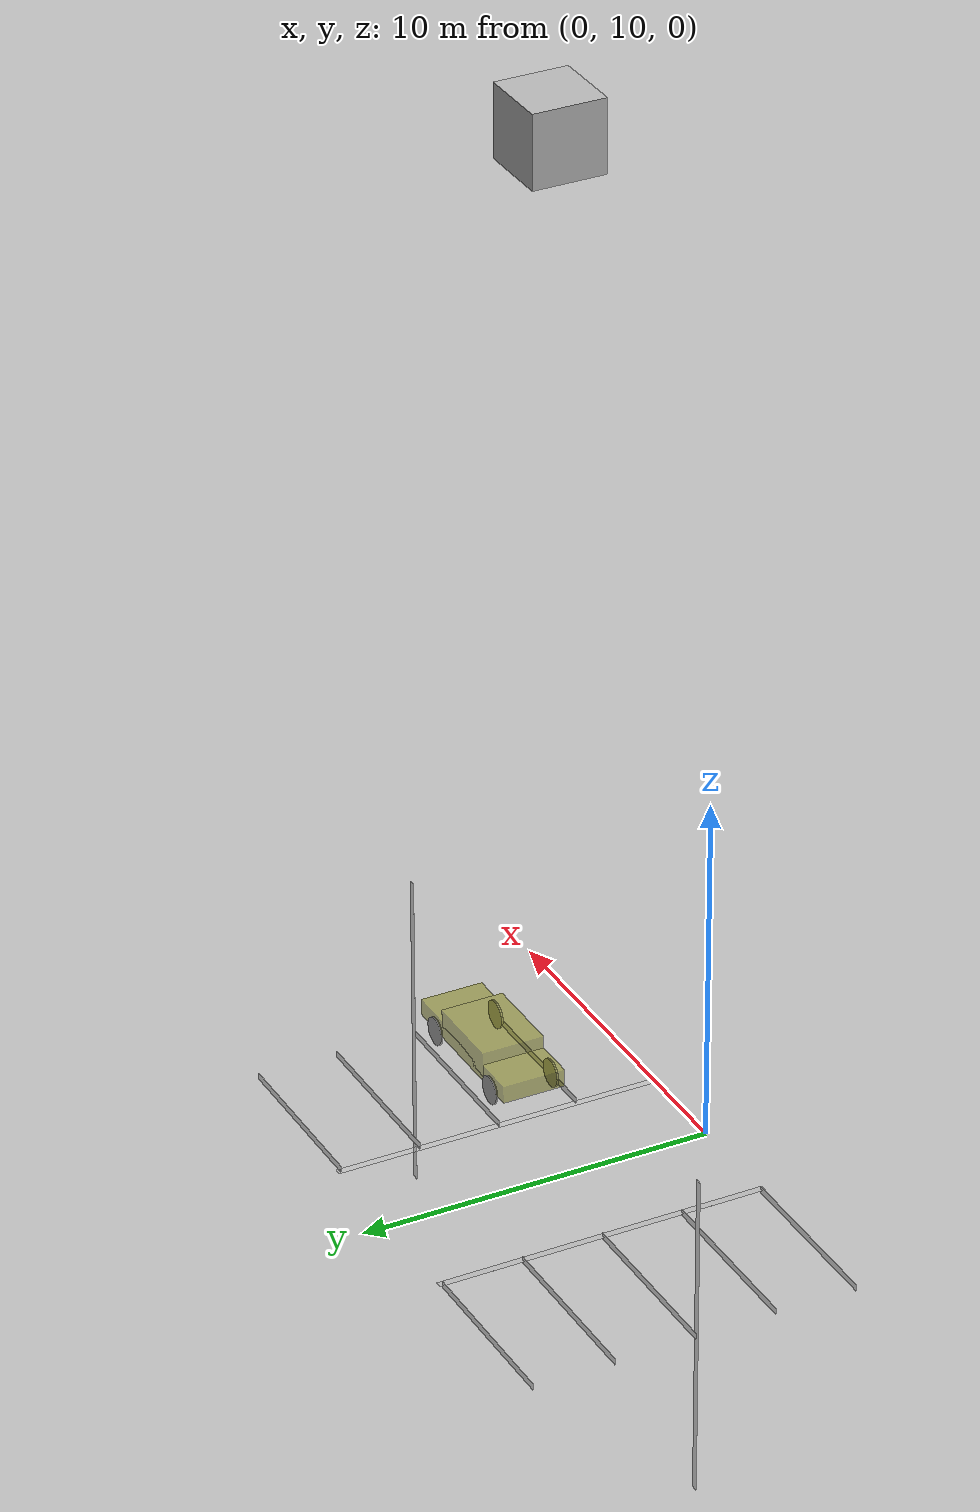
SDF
<sdf version="1.5">
 <world name="default">
  <scene><grid>false</grid></scene>
  <include><uri>model://sun</uri></include>
  <model name="ground">
   <link name="body">
    <collision name="geom">
     <geometry><plane><normal>0 0 1</normal><size>100 100</size></plane></geometry>
     <surface><friction><ode><mu>100</mu><mu2>100</mu2></ode></friction></surface>
    </collision>
    <velocity_decay><linear>0</linear><angular>0</angular></velocity_decay>
   </link>
   <static>false</static>
  </model>
  <model name="right_parking_line">
   <static>true</static>
   <pose>2.9 14.6 0 0 0 0</pose>
   <link name="col1">
    <collision name="col1">
     <geometry><plane><normal>0 0 1</normal><size>0.2 9.4</size></plane></geometry>
    </collision>
    <visual name="geom"><geometry><plane><normal>0 0 1</normal><size>0.2 9.4</size></plane></geometry></visual>
   </link>
   <link name="col2">
    <pose>5 0 0 0 0 0</pose>
    <collision name="geom2">
     <geometry><plane><normal>0 1 0</normal><size>0.2 9.2</size></plane></geometry>
    </collision>
    <visual name="geom3">
     <geometry><plane><normal>0 1 0</normal><size>0.2 9.4</size></plane></geometry>
     <material><ambient>1 1 1 1</ambient></material>
    </visual>
   </link>
   <link name="row1">
    <pose>2.5 -4.6 0 0 0 0</pose>
    <collision name="collision">
     <geometry><plane><normal>0 1 0</normal><size>5 0.2</size></plane></geometry>
    </collision>
    <visual name="visual">
     <geometry><plane><normal>0 1 0</normal><size>5 0.2</size></plane></geometry>
     <material><ambient>1 1 1 1</ambient></material>
    </visual>
   </link>
   <link name="row2">
    <pose>2.5 -2.3 0 0 0 0</pose>
    <collision name="collision">
     <geometry><plane><normal>0 1 0</normal><size>5 0.2</size></plane></geometry>
    </collision>
    <visual name="visual">
     <geometry><plane><normal>0 1 0</normal><size>5 0.2</size></plane></geometry>
     <material><ambient>1 1 1 1</ambient></material>
    </visual>
   </link>
   <link name="row3">
    <pose>2.5 0 0 0 0 0</pose>
    <collision name="collision">
     <geometry><plane><normal>0 1 0</normal><size>5 0.2</size></plane></geometry>
    </collision>
    <visual name="visual">
     <geometry><plane><normal>0 1 0</normal><size>5 0.2</size></plane></geometry>
     <material><ambient>1 1 1 1</ambient></material>
    </visual>
   </link>
   <link name="row4">
    <pose>2.5 2.3 0 0 0 0</pose>
    <collision name="collision">
     <geometry><plane><normal>0 1 0</normal><size>5 0.2</size></plane></geometry>
    </collision>
    <visual name="visual">
     <geometry><plane><normal>0 1 0</normal><size>5 0.2</size></plane></geometry>
     <material><ambient>1 1 1 1</ambient></material>
    </visual>
   </link>
   <link name="row5">
    <pose>2.5 4.6 0 0 0 0</pose>
    <collision name="collision">
     <geometry><plane><normal>0 1 0</normal><size>5 0.2</size></plane></geometry>
    </collision>
    <visual name="visual">
     <geometry><plane><normal>0 1 0</normal><size>5 0.2</size></plane></geometry>
     <material><ambient>1 1 1 1</ambient></material>
    </visual>
   </link>
  </model>
  <model name="left_parking_line">
   <static>true</static>
   <pose>-2.9 14.6 0 0 0 0</pose>
   <link name="col1">
    <collision name="col1">
     <geometry><plane><normal>0 0 1</normal><size>0.2 9.4</size></plane></geometry>
    </collision>
    <visual name="geom"><geometry><plane><normal>0 0 1</normal><size>0.2 9.4</size></plane></geometry></visual>
   </link>
   <link name="col2">
    <pose>-5 0 0 0 0 0</pose>
    <collision name="geom2">
     <geometry><plane><normal>0 1 0</normal><size>0.2 9.4</size></plane></geometry>
    </collision>
    <visual name="geom3">
     <geometry><plane><normal>0 1 0</normal><size>0.2 9.4</size></plane></geometry>
     <material><ambient>1 1 1 1</ambient></material>
    </visual>
   </link>
   <link name="row1">
    <pose>-2.5 -4.6 0 0 0 0</pose>
    <collision name="collision">
     <geometry><plane><normal>0 1 0</normal><size>5 0.2</size></plane></geometry>
    </collision>
    <visual name="visual">
     <geometry><plane><normal>0 1 0</normal><size>5 0.2</size></plane></geometry>
     <material><ambient>1 1 1 1</ambient></material>
    </visual>
   </link>
   <link name="row2">
    <pose>-2.5 -2.3 0 0 0 0</pose>
    <collision name="collision">
     <geometry><plane><normal>0 1 0</normal><size>5 0.2</size></plane></geometry>
    </collision>
    <visual name="visual">
     <geometry><plane><normal>0 1 0</normal><size>5 0.2</size></plane></geometry>
     <material><ambient>1 1 1 1</ambient></material>
    </visual>
   </link>
   <link name="row3">
    <pose>-2.5 0 0 0 0 0</pose>
    <collision name="collision">
     <geometry><plane><normal>0 1 0</normal><size>5 0.2</size></plane></geometry>
    </collision>
    <visual name="visual">
     <geometry><plane><normal>0 1 0</normal><size>5 0.2</size></plane></geometry>
     <material><ambient>1 1 1 1</ambient></material>
    </visual>
   </link>
   <link name="row4">
    <pose>-2.5 2.3 0 0 0 0</pose>
    <collision name="collision">
     <geometry><plane><normal>0 1 0</normal><size>5 0.2</size></plane></geometry>
    </collision>
    <visual name="visual">
     <geometry><plane><normal>0 1 0</normal><size>5 0.2</size></plane></geometry>
     <material><ambient>1 1 1 1</ambient></material>
    </visual>
   </link>
   <link name="row5">
    <pose>-2.5 4.6 0 0 0 0</pose>
    <collision name="collision">
     <geometry><plane><normal>0 1 0</normal><size>5 0.2</size></plane></geometry>
    </collision>
    <visual name="visual">
     <geometry><plane><normal>0 1 0</normal><size>5 0.2</size></plane></geometry>
     <material><ambient>1 1 1 1</ambient></material>
    </visual>
   </link>
  </model>
  <model name="Map_View_camera">
   <static>true</static>
   <pose>0 14.6 30 0 1.57 0</pose>
   <link name="link">
    <visual name="visual"><geometry><box><size>2 2 2</size></box></geometry></visual>
    <sensor name="my_camera" type="camera">
     <camera>
      <save enabled="false"><path>/tmp/Parking/Map_View</path></save>
      <horizontal_fov>1.047</horizontal_fov>
      <image><width>1920</width><height>1080</height></image>
      <clip><near>0.1</near><far>100</far></clip>
     </camera>
     <always_on>1</always_on>
     <update_rate>0.5</update_rate>
    </sensor>
   </link>
  </model>
  <model name="car1">
   <static>true</static>
   <pose>5.5 13.45 0.4 0 0 1.57</pose>
   <link name="link">
    <pose>0 0 0.3 0 0 0</pose>
    <collision name="collision"><geometry><box><size>1.8 4.8 0.5</size></box></geometry></collision>
    <visual name="visual">
     <geometry><box><size>1.8 4.8 0.5</size></box></geometry>
     <material><ambient>0.5 0.5 0 0.5</ambient></material>
    </visual>
    <collision name="up_body">
     <pose>0 0 0.25 0 0 0</pose>
     <geometry><box><size>1.8 2.4 0.7</size></box></geometry>
    </collision>
    <visual name="up_body">
     <pose>0 0 0.25 0 0 0</pose>
     <geometry><box><size>1.8 2.4 0.7</size></box></geometry>
     <material><ambient>0.5 0.5 0 0.5</ambient></material>
    </visual>
   </link>
   <link name="F_left_wheel">
    <pose>0.9 1.6 0   1.57 1.57 1.57</pose>
    <collision name="collision">
     <geometry><cylinder><radius>.4</radius><length>.05</length></cylinder></geometry>
    </collision>
    <visual name="visual">
     <geometry><cylinder><radius>.4</radius><length>.05</length></cylinder></geometry>
    </visual>
   </link>
   <link name="F_right_wheel">
    <pose>-0.9 1.6 0   1.57 1.57 1.57</pose>
    <collision name="collision">
     <geometry><cylinder><radius>.4</radius><length>.05</length></cylinder></geometry>
    </collision>
    <visual name="visual">
     <geometry><cylinder><radius>.4</radius><length>.05</length></cylinder></geometry>
    </visual>
   </link>
   <link name="B_left_wheel">
    <pose>0.9 -1.6 0   1.57 1.57 1.57</pose>
    <collision name="collision">
     <geometry><cylinder><radius>.4</radius><length>.05</length></cylinder></geometry>
    </collision>
    <visual name="visual">
     <geometry><cylinder><radius>.4</radius><length>.05</length></cylinder></geometry>
    </visual>
   </link>
   <link name="B_right_wheel">
    <pose>-0.9 -1.6 0   1.57 1.57 1.57</pose>
    <collision name="collision">
     <geometry><cylinder><radius>.4</radius><length>.05</length></cylinder></geometry>
    </collision>
    <visual name="visual">
     <geometry><cylinder><radius>.4</radius><length>.05</length></cylinder></geometry>
    </visual>
   </link>
  </model>
 </world>
</sdf>
